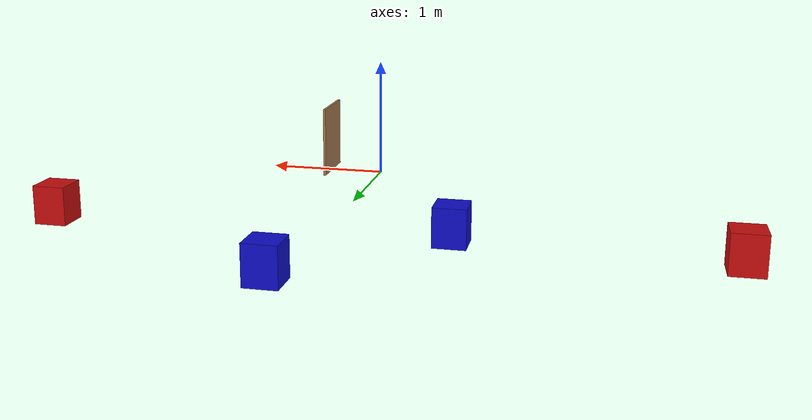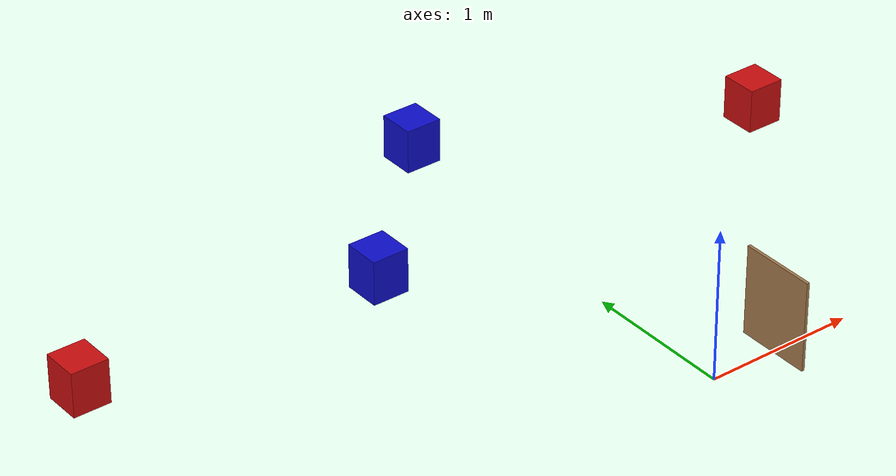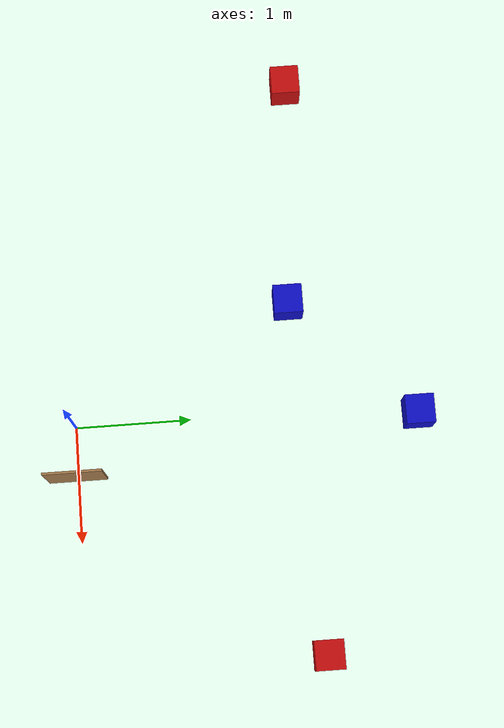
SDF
<sdf version="1.5">
 <world name="tars_inicio_oculto">
  <physics type="ode">
   <max_step_size>0.001</max_step_size>
   <real_time_factor>1</real_time_factor>
   <real_time_update_rate>1000</real_time_update_rate>
   <gravity>0 0 -9.8</gravity>
  </physics>
  <plugin filename="gz-sim-physics-system" name="gz::sim::systems::Physics"/>
  <plugin filename="gz-sim-user-commands-system" name="gz::sim::systems::UserCommands"/>
  <plugin filename="gz-sim-scene-broadcaster-system" name="gz::sim::systems::SceneBroadcaster"/>
  <plugin filename="gz-sim-contact-system" name="gz::sim::systems::Contact"/>
  <plugin filename="gz-sim-sensors-system" name="gz::sim::systems::Sensors">
   <render_engine>ogre2</render_engine>
  </plugin>
  <plugin filename="gz-sim-imu-system" name="gz::sim::systems::Imu"/>
  <scene>
   <shadows>false</shadows>
   <ambient>0.2 0.2 0.2 1</ambient>
   <background>1 1 1 1</background>
   <grid>false</grid>
   <origin_visual>false</origin_visual>
  </scene>
  <include><uri>model://sun</uri></include>
  <light name="camera_spot_1_light" type="spot">
   <pose>-6 4 4 0 -1 -0.8</pose>
   <diffuse>0.5 0.5 0.5 1</diffuse>
   <specular>0.1 0.1 0.1 1</specular>
   <direction>0 0 -1</direction>
   <attenuation>
    <range>20</range>
    <constant>0.2</constant>
    <linear>0.01</linear>
    <quadratic>0.001</quadratic>
   </attenuation>
   <cast_shadows>0</cast_shadows>
   <spot><inner_angle>0.6</inner_angle><outer_angle>1</outer_angle><falloff>1</falloff></spot>
  </light>
  <light name="camera_spot_2_light" type="spot">
   <pose>5 -3 4 0 0.8 -0.6</pose>
   <diffuse>0.5 0.5 0.5 1</diffuse>
   <specular>0.1 0.1 0.1 1</specular>
   <direction>0 0 -1</direction>
   <attenuation>
    <range>20</range>
    <constant>0.3</constant>
    <linear>0.01</linear>
    <quadratic>0.001</quadratic>
   </attenuation>
   <cast_shadows>0</cast_shadows>
   <spot><inner_angle>0.6</inner_angle><outer_angle>1</outer_angle><falloff>1</falloff></spot>
  </light>
  <model name="marcas_color">
   <static>1</static>
   <link name="cuadrado_azul_1">
    <pose>-0.9563 1.9086 0.15 0.0 0.0 3.141592653589793</pose>
    <collision name="collision"><geometry><box><size>0.25 0.25 0.3</size></box></geometry></collision>
    <visual name="visual">
     <geometry><box><size>0.25 0.25 0.3</size></box></geometry>
     <material>
      <ambient>0.05 0.05 0.8 1</ambient>
      <diffuse>0.05 0.05 0.8 1</diffuse>
      <specular>0.1 0.1 0.1 1</specular>
     </material>
    </visual>
   </link>
   <link name="cuadrado_rojo_2">
    <pose>-2.9552 2.036 0.15 0.0 0.0 3.141592653589793</pose>
    <collision name="collision"><geometry><box><size>0.25 0.25 0.3</size></box></geometry></collision>
    <visual name="visual">
     <geometry><box><size>0.25 0.25 0.3</size></box></geometry>
     <material>
      <ambient>0.8 0.05 0.05 1</ambient>
      <diffuse>0.8 0.05 0.05 1</diffuse>
      <specular>0.1 0.1 0.1 1</specular>
     </material>
    </visual>
   </link>
   <link name="cuadrado_azul_2">
    <pose>0.0847 2.9586 0.15 0.0 0.0 3.141592653589793</pose>
    <collision name="collision"><geometry><box><size>0.25 0.25 0.3</size></box></geometry></collision>
    <visual name="visual">
     <geometry><box><size>0.25 0.25 0.3</size></box></geometry>
     <material>
      <ambient>0.05 0.05 0.8 1</ambient>
      <diffuse>0.05 0.05 0.8 1</diffuse>
      <specular>0.1 0.1 0.1 1</specular>
     </material>
    </visual>
   </link>
   <link name="cuadrado_rojo_3">
    <pose>2.0847 2.0202 0.15 0.0 0.0 3.141592653589793</pose>
    <collision name="collision"><geometry><box><size>0.25 0.25 0.3</size></box></geometry></collision>
    <visual name="visual">
     <geometry><box><size>0.25 0.25 0.3</size></box></geometry>
     <material>
      <ambient>0.8 0.05 0.05 1</ambient>
      <diffuse>0.8 0.05 0.05 1</diffuse>
      <specular>0.1 0.1 0.1 1</specular>
     </material>
    </visual>
   </link>
  </model>
  <model name="pared_inicio_tars">
   <static>true</static>
   <link name="panel_inicio">
    <pose>0.455 -0.0 0.3 0.0 0.0 3.141592653589793</pose>
    <collision name="collision"><geometry><box><size>0.02 0.5 0.6</size></box></geometry></collision>
    <visual name="visual">
     <geometry><box><size>0.02 0.5 0.6</size></box></geometry>
     <material><ambient>0.65 0.48 0.30 1</ambient><diffuse>0.65 0.48 0.30 1</diffuse></material>
    </visual>
   </link>
  </model>
 </world>
</sdf>
